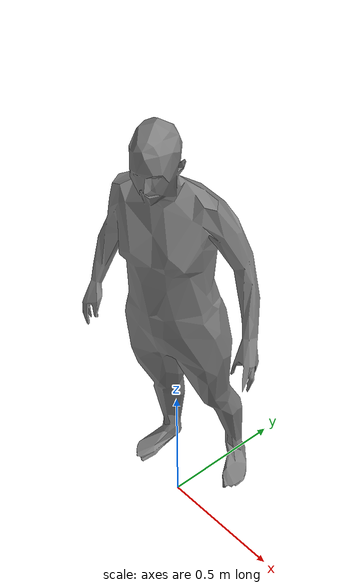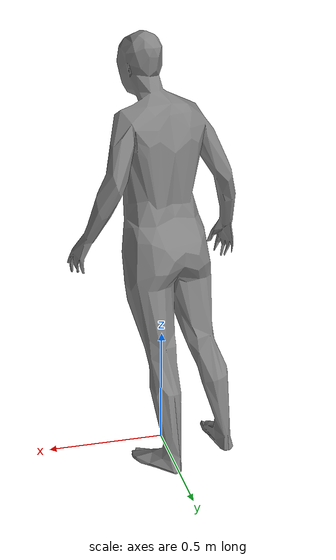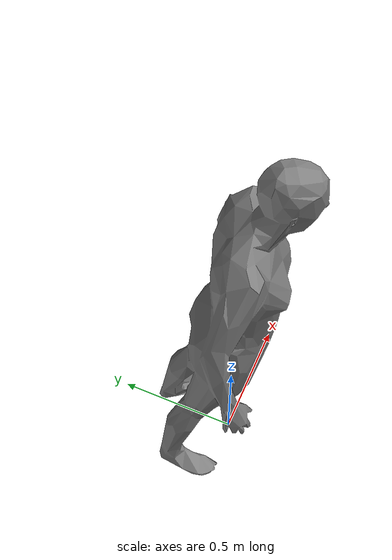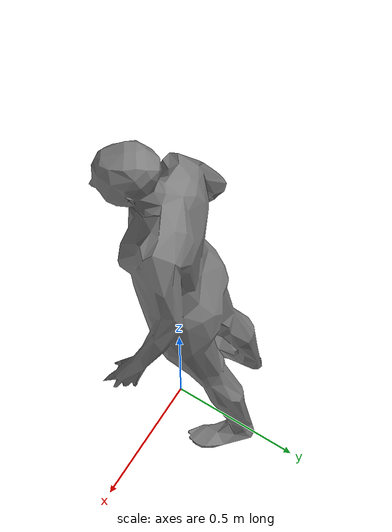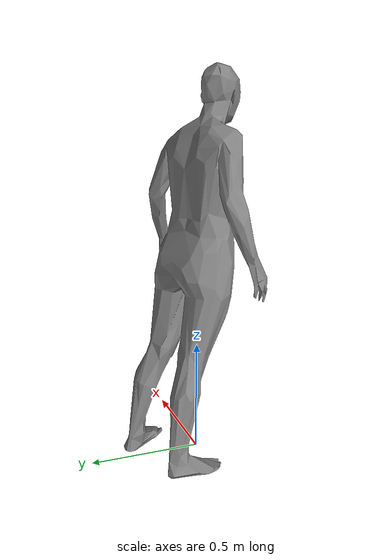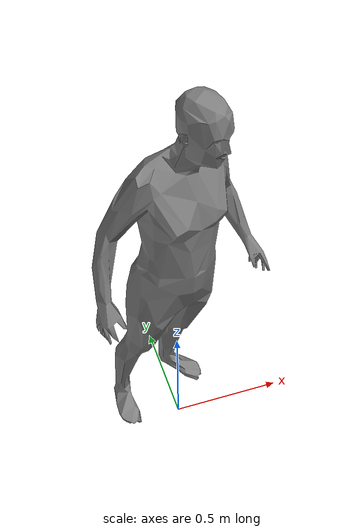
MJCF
<mujoco model="human">
    <compiler angle="radian" meshdir="environment_parts/" />

      <!-- Define the assets -->
    <asset>
        <mesh name="human" file="human/assets_human/human_27.stl"/>
    </asset>

    <!-- Define the world body -->
    <worldbody>
        <!-- Load the hammer mesh and place it at the origin -->
        <body name="human" pos="0 0 0">
            <geom name="human" type="mesh" mesh="human"/>
        </body>
    </worldbody>
</mujoco>
